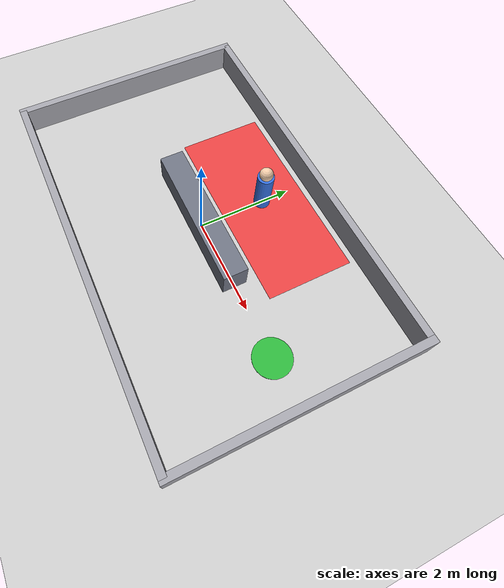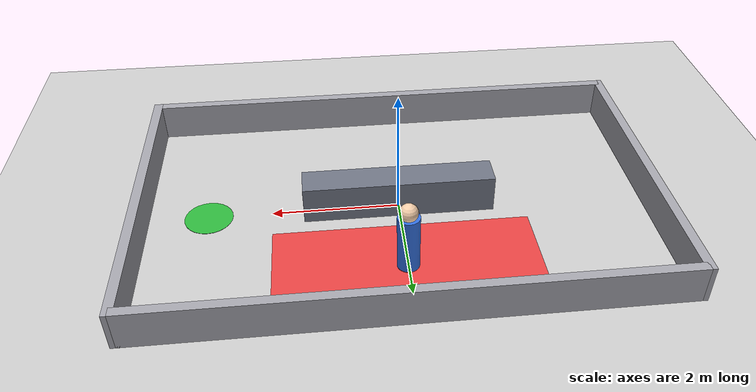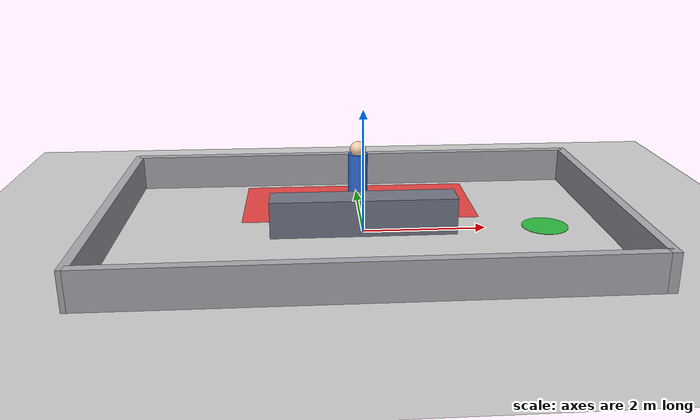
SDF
<?xml version="1.0"?>
<sdf version="1.6">
  <world name="default">

    <include>
      <uri>model://ground_plane</uri>
    </include>

    <include>
      <uri>model://sun</uri>
    </include>

    <scene>
      <shadows>false</shadows>
      <ambient>0.76 0.76 0.76 1.0</ambient>
      <background>0.95 0.95 0.94 1.0</background>
    </scene>

    <gui fullscreen='0'>
      <camera name='user_camera'>
        <pose frame=''>0.0 0.0 13.0 0 1.52 0</pose>
        <view_controller>orbit</view_controller>
        <projection_type>perspective</projection_type>
      </camera>
    </gui>

    <physics type="ode">
      <real_time_update_rate>0</real_time_update_rate>
      <max_step_size>0.001</max_step_size>
      <real_time_factor>0</real_time_factor>
      <ode>
        <solver>
          <type>quick</type>
          <iters>150</iters>
          <precon_iters>0</precon_iters>
          <sor>1.400000</sor>
          <use_dynamic_moi_rescaling>1</use_dynamic_moi_rescaling>
        </solver>
        <constraints>
          <cfm>0.00001</cfm>
          <erp>0.2</erp>
          <contact_max_correcting_vel>2000.000000</contact_max_correcting_vel>
          <contact_surface_layer>0.01000</contact_surface_layer>
        </constraints>
      </ode>
    </physics>

    <!-- Room: 8m x 5m -->
    <model name='zone_detour_layout'>
      <static>true</static>

      <!-- Top wall -->
      <link name='top_wall'>
        <pose>0 2.5 0 0 0 0</pose>
        <collision name='collision'>
          <pose>0 0 0.3 0 0 0</pose>
          <geometry><box><size>8.0 0.15 0.6</size></box></geometry>
        </collision>
        <visual name='visual'>
          <pose>0 0 0.3 0 0 0</pose>
          <geometry><box><size>8.0 0.15 0.6</size></box></geometry>
          <material>
            <ambient>0.65 0.65 0.68 1.0</ambient>
            <diffuse>0.65 0.65 0.68 1.0</diffuse>
          </material>
        </visual>
      </link>

      <!-- Bottom wall -->
      <link name='bottom_wall'>
        <pose>0 -2.5 0 0 0 0</pose>
        <collision name='collision'>
          <pose>0 0 0.3 0 0 0</pose>
          <geometry><box><size>8.0 0.15 0.6</size></box></geometry>
        </collision>
        <visual name='visual'>
          <pose>0 0 0.3 0 0 0</pose>
          <geometry><box><size>8.0 0.15 0.6</size></box></geometry>
          <material>
            <ambient>0.65 0.65 0.68 1.0</ambient>
            <diffuse>0.65 0.65 0.68 1.0</diffuse>
          </material>
        </visual>
      </link>

      <!-- Left wall -->
      <link name='left_wall'>
        <pose>-4.0 0 0 0 0 1.5708</pose>
        <collision name='collision'>
          <pose>0 0 0.3 0 0 0</pose>
          <geometry><box><size>5.15 0.15 0.6</size></box></geometry>
        </collision>
        <visual name='visual'>
          <pose>0 0 0.3 0 0 0</pose>
          <geometry><box><size>5.15 0.15 0.6</size></box></geometry>
          <material>
            <ambient>0.65 0.65 0.68 1.0</ambient>
            <diffuse>0.65 0.65 0.68 1.0</diffuse>
          </material>
        </visual>
      </link>

      <!-- Right wall -->
      <link name='right_wall'>
        <pose>4.0 0 0 0 0 1.5708</pose>
        <collision name='collision'>
          <pose>0 0 0.3 0 0 0</pose>
          <geometry><box><size>5.15 0.15 0.6</size></box></geometry>
        </collision>
        <visual name='visual'>
          <pose>0 0 0.3 0 0 0</pose>
          <geometry><box><size>5.15 0.15 0.6</size></box></geometry>
          <material>
            <ambient>0.65 0.65 0.68 1.0</ambient>
            <diffuse>0.65 0.65 0.68 1.0</diffuse>
          </material>
        </visual>
      </link>

      <!-- Central barrier: 3.0m x 0.5m at origin -->
      <link name='barrier'>
        <pose>0 0 0 0 0 0</pose>
        <collision name='collision'>
          <pose>0 0 0.3 0 0 0</pose>
          <geometry><box><size>3.0 0.5 0.6</size></box></geometry>
        </collision>
        <visual name='visual'>
          <pose>0 0 0.3 0 0 0</pose>
          <geometry><box><size>3.0 0.5 0.6</size></box></geometry>
          <material>
            <ambient>0.44 0.46 0.52 1.0</ambient>
            <diffuse>0.44 0.46 0.52 1.0</diffuse>
          </material>
        </visual>
      </link>
    </model>

    <!-- Goal marker -->
    <model name='goal_marker'>
      <static>true</static>
      <pose>3.0 0.0 0 0 0 0</pose>
      <link name='marker'>
        <visual name='pad_visual'>
          <pose>0 0 0.003 0 0 0</pose>
          <geometry>
            <cylinder><radius>0.38</radius><length>0.006</length></cylinder>
          </geometry>
          <material>
            <ambient>0.18 0.72 0.24 1.0</ambient>
            <diffuse>0.18 0.72 0.24 1.0</diffuse>
          </material>
        </visual>
      </link>
    </model>

    <!-- Human obstacle in upper aisle -->
    <model name='human_upper'>
      <static>true</static>
      <pose>0.0 1.4 0 0 0 0</pose>
      <link name='body'>
        <collision name='body_collision'>
          <pose>0 0 0.45 0 0 0</pose>
          <geometry>
            <cylinder><radius>0.17</radius><length>0.90</length></cylinder>
          </geometry>
        </collision>
        <visual name='body_visual'>
          <pose>0 0 0.45 0 0 0</pose>
          <geometry>
            <cylinder><radius>0.17</radius><length>0.90</length></cylinder>
          </geometry>
          <material>
            <ambient>0.20 0.44 0.88 1.0</ambient>
            <diffuse>0.20 0.44 0.88 1.0</diffuse>
          </material>
        </visual>
        <visual name='head_visual'>
          <pose>0 0 0.98 0 0 0</pose>
          <geometry>
            <sphere><radius>0.14</radius></sphere>
          </geometry>
          <material>
            <ambient>0.97 0.82 0.68 1.0</ambient>
            <diffuse>0.97 0.82 0.68 1.0</diffuse>
          </material>
        </visual>
      </link>
    </model>

    <!-- Red danger-zone floor marker (upper aisle) -->
    <model name='danger_zone_marker'>
      <static>true</static>
      <pose>0.0 1.4 0 0 0 0</pose>
      <link name='zone'>
        <visual name='zone_visual'>
          <pose>0 0 0.003 0 0 0</pose>
          <geometry>
            <box><size>4.0 1.8 0.006</size></box>
          </geometry>
          <transparency>0.28</transparency>
          <material>
            <ambient>1.0 0.10 0.10 1.0</ambient>
            <diffuse>1.0 0.10 0.10 1.0</diffuse>
          </material>
        </visual>
      </link>
    </model>

  </world>
</sdf>
